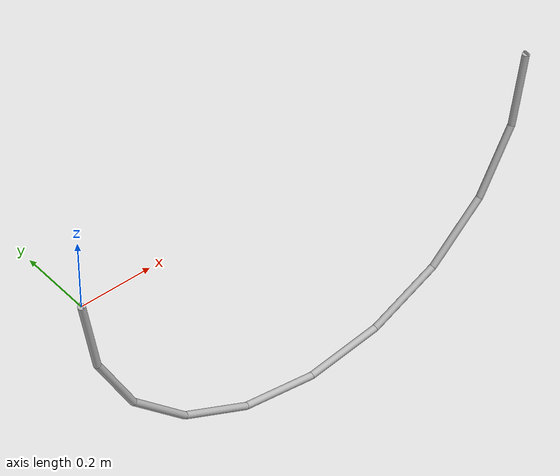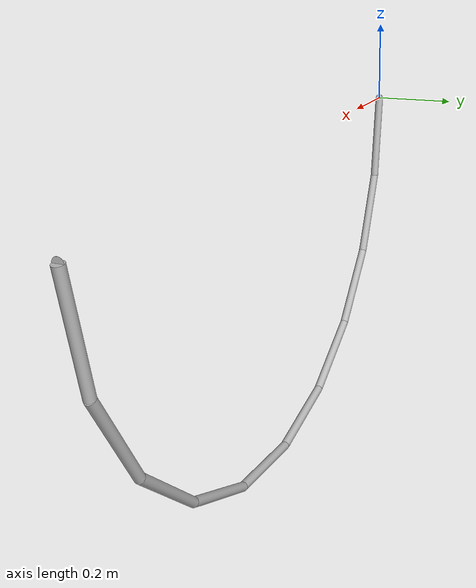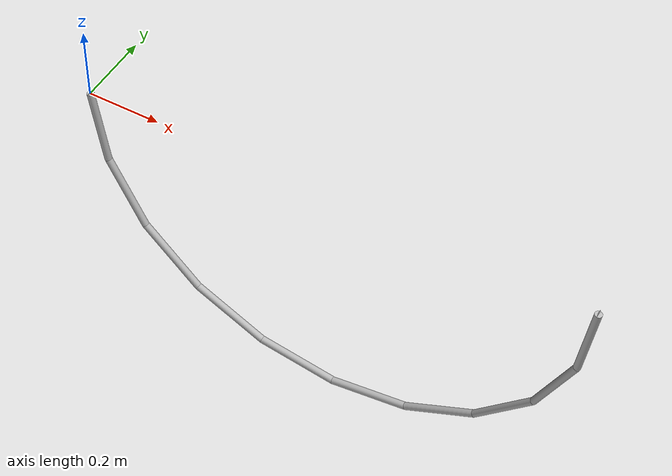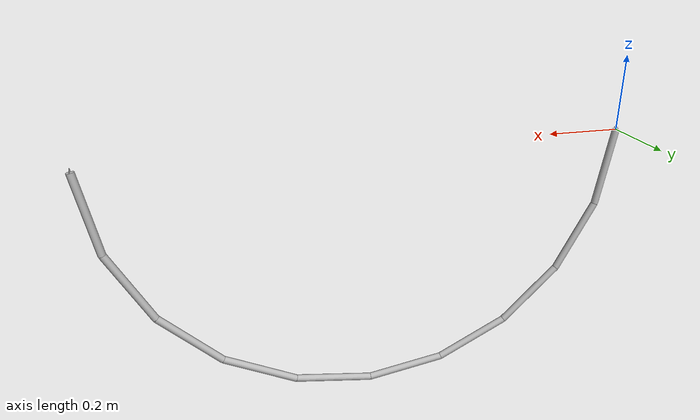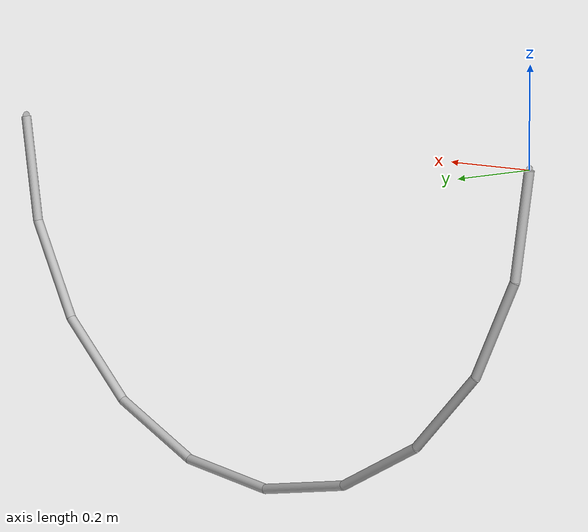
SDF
<sdf version='1.10'>
  <model name='tether'>
    <link name='element_first'>
      <inertial>
        <pose>5.0000000000000002e-05 0 0 0 1.5707963267948966 0</pose>
        <mass>0.0001</mass>
        <inertia>
          <ixx>2.500083333333334e-09</ixx>
          <ixy>0</ixy>
          <ixz>0</ixz>
          <iyy>2.500083333333334e-09</iyy>
          <iyz>0</iyz>
          <izz>5.0000000000000001e-09</izz>
        </inertia>
      </inertial>
      <visual name='element_first_visual'>
        <pose>5.0000000000000002e-05 0 0 0 1.5707963267948966 0</pose>
        <geometry>
          <cylinder>
            <length>0.0001</length>
            <radius>0.01</radius>
          </cylinder>
        </geometry>
      </visual>
    </link>
    <joint name='joint_0_to_1' type='universal'>
      <pose relative_to='element_first'>0.0001 0 0 0 1.4137166941154073 0</pose>
      <parent>element_first</parent>
      <child>element_1</child>
      <axis>
        <xyz>0 1 0</xyz>
        <limit>
          <lower>-inf</lower>
          <upper>inf</upper>
        </limit>
        <dynamics>
          <damping>0.01</damping>
          <friction>0</friction>
          <spring_reference>0</spring_reference>
          <spring_stiffness>0</spring_stiffness>
        </dynamics>
      </axis>
      <axis2>
        <xyz>0 0 1</xyz>
        <limit>
          <lower>-inf</lower>
          <upper>inf</upper>
        </limit>
        <dynamics>
          <damping>0.01</damping>
          <friction>0</friction>
          <spring_reference>0</spring_reference>
          <spring_stiffness>0</spring_stiffness>
        </dynamics>
      </axis2>
    </joint>
    <link name='element_1'>
      <pose relative_to='joint_0_to_1'>0 0 0 0 0 0</pose>
      <inertial>
        <pose>0.10950412552816161 0 0 0 1.5707963267948966 0</pose>
        <mass>0.002</mass>
        <inertia>
          <ixx>8.0441023384582554e-06</ixx>
          <ixy>0</ixy>
          <ixz>0</ixz>
          <iyy>8.0441023384582554e-06</iyy>
          <iyz>0</iyz>
          <izz>9.9999999999999995e-08</izz>
        </inertia>
      </inertial>
      <visual name='element_1_visual'>
        <pose>0.10950412552816161 0 0 0 1.5707963267948966 0</pose>
        <geometry>
          <cylinder>
            <length>0.21900825105632329</length>
            <radius>0.01</radius>
          </cylinder>
        </geometry>
      </visual>
    </link>
    <joint name='joint_1_to_2' type='universal'>
      <pose relative_to='element_1'>0.21900825105632329 0 0 0 -0.31415926535897948 0</pose>
      <parent>element_1</parent>
      <child>element_2</child>
      <axis>
        <xyz>0 1 0</xyz>
        <limit>
          <lower>-inf</lower>
          <upper>inf</upper>
        </limit>
        <dynamics>
          <damping>0.01</damping>
          <friction>0</friction>
          <spring_reference>0</spring_reference>
          <spring_stiffness>0</spring_stiffness>
        </dynamics>
      </axis>
      <axis2>
        <xyz>0 0 1</xyz>
        <limit>
          <lower>-inf</lower>
          <upper>inf</upper>
        </limit>
        <dynamics>
          <damping>0.01</damping>
          <friction>0</friction>
          <spring_reference>0</spring_reference>
          <spring_stiffness>0</spring_stiffness>
        </dynamics>
      </axis2>
    </joint>
    <link name='element_2'>
      <pose relative_to='joint_1_to_2'>0 0 0 0 0 0</pose>
      <inertial>
        <pose>0.10950412552816161 0 0 0 1.5707963267948966 0</pose>
        <mass>0.002</mass>
        <inertia>
          <ixx>8.0441023384582554e-06</ixx>
          <ixy>0</ixy>
          <ixz>0</ixz>
          <iyy>8.0441023384582554e-06</iyy>
          <iyz>0</iyz>
          <izz>9.9999999999999995e-08</izz>
        </inertia>
      </inertial>
      <visual name='element_2_visual'>
        <pose>0.10950412552816161 0 0 0 1.5707963267948966 0</pose>
        <geometry>
          <cylinder>
            <length>0.21900825105632329</length>
            <radius>0.01</radius>
          </cylinder>
        </geometry>
      </visual>
    </link>
    <joint name='joint_2_to_3' type='universal'>
      <pose relative_to='element_2'>0.21900825105632329 0 0 0 -0.31415926535897948 0</pose>
      <parent>element_2</parent>
      <child>element_3</child>
      <axis>
        <xyz>0 1 0</xyz>
        <limit>
          <lower>-inf</lower>
          <upper>inf</upper>
        </limit>
        <dynamics>
          <damping>0.01</damping>
          <friction>0</friction>
          <spring_reference>0</spring_reference>
          <spring_stiffness>0</spring_stiffness>
        </dynamics>
      </axis>
      <axis2>
        <xyz>0 0 1</xyz>
        <limit>
          <lower>-inf</lower>
          <upper>inf</upper>
        </limit>
        <dynamics>
          <damping>0.01</damping>
          <friction>0</friction>
          <spring_reference>0</spring_reference>
          <spring_stiffness>0</spring_stiffness>
        </dynamics>
      </axis2>
    </joint>
    <link name='element_3'>
      <pose relative_to='joint_2_to_3'>0 0 0 0 0 0</pose>
      <inertial>
        <pose>0.10950412552816161 0 0 0 1.5707963267948966 0</pose>
        <mass>0.002</mass>
        <inertia>
          <ixx>8.0441023384582554e-06</ixx>
          <ixy>0</ixy>
          <ixz>0</ixz>
          <iyy>8.0441023384582554e-06</iyy>
          <iyz>0</iyz>
          <izz>9.9999999999999995e-08</izz>
        </inertia>
      </inertial>
      <visual name='element_3_visual'>
        <pose>0.10950412552816161 0 0 0 1.5707963267948966 0</pose>
        <geometry>
          <cylinder>
            <length>0.21900825105632329</length>
            <radius>0.01</radius>
          </cylinder>
        </geometry>
      </visual>
    </link>
    <joint name='joint_3_to_4' type='universal'>
      <pose relative_to='element_3'>0.21900825105632329 0 0 0 -0.31415926535897948 0</pose>
      <parent>element_3</parent>
      <child>element_4</child>
      <axis>
        <xyz>0 1 0</xyz>
        <limit>
          <lower>-inf</lower>
          <upper>inf</upper>
        </limit>
        <dynamics>
          <damping>0.01</damping>
          <friction>0</friction>
          <spring_reference>0</spring_reference>
          <spring_stiffness>0</spring_stiffness>
        </dynamics>
      </axis>
      <axis2>
        <xyz>0 0 1</xyz>
        <limit>
          <lower>-inf</lower>
          <upper>inf</upper>
        </limit>
        <dynamics>
          <damping>0.01</damping>
          <friction>0</friction>
          <spring_reference>0</spring_reference>
          <spring_stiffness>0</spring_stiffness>
        </dynamics>
      </axis2>
    </joint>
    <link name='element_4'>
      <pose relative_to='joint_3_to_4'>0 0 0 0 0 0</pose>
      <inertial>
        <pose>0.10950412552816161 0 0 0 1.5707963267948966 0</pose>
        <mass>0.002</mass>
        <inertia>
          <ixx>8.0441023384582554e-06</ixx>
          <ixy>0</ixy>
          <ixz>0</ixz>
          <iyy>8.0441023384582554e-06</iyy>
          <iyz>0</iyz>
          <izz>9.9999999999999995e-08</izz>
        </inertia>
      </inertial>
      <visual name='element_4_visual'>
        <pose>0.10950412552816161 0 0 0 1.5707963267948966 0</pose>
        <geometry>
          <cylinder>
            <length>0.21900825105632329</length>
            <radius>0.01</radius>
          </cylinder>
        </geometry>
      </visual>
    </link>
    <joint name='joint_4_to_5' type='universal'>
      <pose relative_to='element_4'>0.21900825105632329 0 0 0 -0.31415926535897948 0</pose>
      <parent>element_4</parent>
      <child>element_5</child>
      <axis>
        <xyz>0 1 0</xyz>
        <limit>
          <lower>-inf</lower>
          <upper>inf</upper>
        </limit>
        <dynamics>
          <damping>0.01</damping>
          <friction>0</friction>
          <spring_reference>0</spring_reference>
          <spring_stiffness>0</spring_stiffness>
        </dynamics>
      </axis>
      <axis2>
        <xyz>0 0 1</xyz>
        <limit>
          <lower>-inf</lower>
          <upper>inf</upper>
        </limit>
        <dynamics>
          <damping>0.01</damping>
          <friction>0</friction>
          <spring_reference>0</spring_reference>
          <spring_stiffness>0</spring_stiffness>
        </dynamics>
      </axis2>
    </joint>
    <link name='element_5'>
      <pose relative_to='joint_4_to_5'>0 0 0 0 0 0</pose>
      <inertial>
        <pose>0.10950412552816161 0 0 0 1.5707963267948966 0</pose>
        <mass>0.002</mass>
        <inertia>
          <ixx>8.0441023384582554e-06</ixx>
          <ixy>0</ixy>
          <ixz>0</ixz>
          <iyy>8.0441023384582554e-06</iyy>
          <iyz>0</iyz>
          <izz>9.9999999999999995e-08</izz>
        </inertia>
      </inertial>
      <visual name='element_5_visual'>
        <pose>0.10950412552816161 0 0 0 1.5707963267948966 0</pose>
        <geometry>
          <cylinder>
            <length>0.21900825105632329</length>
            <radius>0.01</radius>
          </cylinder>
        </geometry>
      </visual>
    </link>
    <joint name='joint_5_to_6' type='universal'>
      <pose relative_to='element_5'>0.21900825105632329 0 0 0 -0.31415926535897948 0</pose>
      <parent>element_5</parent>
      <child>element_6</child>
      <axis>
        <xyz>0 1 0</xyz>
        <limit>
          <lower>-inf</lower>
          <upper>inf</upper>
        </limit>
        <dynamics>
          <damping>0.01</damping>
          <friction>0</friction>
          <spring_reference>0</spring_reference>
          <spring_stiffness>0</spring_stiffness>
        </dynamics>
      </axis>
      <axis2>
        <xyz>0 0 1</xyz>
        <limit>
          <lower>-inf</lower>
          <upper>inf</upper>
        </limit>
        <dynamics>
          <damping>0.01</damping>
          <friction>0</friction>
          <spring_reference>0</spring_reference>
          <spring_stiffness>0</spring_stiffness>
        </dynamics>
      </axis2>
    </joint>
    <link name='element_6'>
      <pose relative_to='joint_5_to_6'>0 0 0 0 0 0</pose>
      <inertial>
        <pose>0.10950412552816161 0 0 0 1.5707963267948966 0</pose>
        <mass>0.002</mass>
        <inertia>
          <ixx>8.0441023384582554e-06</ixx>
          <ixy>0</ixy>
          <ixz>0</ixz>
          <iyy>8.0441023384582554e-06</iyy>
          <iyz>0</iyz>
          <izz>9.9999999999999995e-08</izz>
        </inertia>
      </inertial>
      <visual name='element_6_visual'>
        <pose>0.10950412552816161 0 0 0 1.5707963267948966 0</pose>
        <geometry>
          <cylinder>
            <length>0.21900825105632329</length>
            <radius>0.01</radius>
          </cylinder>
        </geometry>
      </visual>
    </link>
    <joint name='joint_6_to_7' type='universal'>
      <pose relative_to='element_6'>0.21900825105632329 0 0 0 -0.31415926535897948 0</pose>
      <parent>element_6</parent>
      <child>element_7</child>
      <axis>
        <xyz>0 1 0</xyz>
        <limit>
          <lower>-inf</lower>
          <upper>inf</upper>
        </limit>
        <dynamics>
          <damping>0.01</damping>
          <friction>0</friction>
          <spring_reference>0</spring_reference>
          <spring_stiffness>0</spring_stiffness>
        </dynamics>
      </axis>
      <axis2>
        <xyz>0 0 1</xyz>
        <limit>
          <lower>-inf</lower>
          <upper>inf</upper>
        </limit>
        <dynamics>
          <damping>0.01</damping>
          <friction>0</friction>
          <spring_reference>0</spring_reference>
          <spring_stiffness>0</spring_stiffness>
        </dynamics>
      </axis2>
    </joint>
    <link name='element_7'>
      <pose relative_to='joint_6_to_7'>0 0 0 0 0 0</pose>
      <inertial>
        <pose>0.10950412552816161 0 0 0 1.5707963267948966 0</pose>
        <mass>0.002</mass>
        <inertia>
          <ixx>8.0441023384582554e-06</ixx>
          <ixy>0</ixy>
          <ixz>0</ixz>
          <iyy>8.0441023384582554e-06</iyy>
          <iyz>0</iyz>
          <izz>9.9999999999999995e-08</izz>
        </inertia>
      </inertial>
      <visual name='element_7_visual'>
        <pose>0.10950412552816161 0 0 0 1.5707963267948966 0</pose>
        <geometry>
          <cylinder>
            <length>0.21900825105632329</length>
            <radius>0.01</radius>
          </cylinder>
        </geometry>
      </visual>
    </link>
    <joint name='joint_7_to_8' type='universal'>
      <pose relative_to='element_7'>0.21900825105632329 0 0 0 -0.31415926535897948 0</pose>
      <parent>element_7</parent>
      <child>element_8</child>
      <axis>
        <xyz>0 1 0</xyz>
        <limit>
          <lower>-inf</lower>
          <upper>inf</upper>
        </limit>
        <dynamics>
          <damping>0.01</damping>
          <friction>0</friction>
          <spring_reference>0</spring_reference>
          <spring_stiffness>0</spring_stiffness>
        </dynamics>
      </axis>
      <axis2>
        <xyz>0 0 1</xyz>
        <limit>
          <lower>-inf</lower>
          <upper>inf</upper>
        </limit>
        <dynamics>
          <damping>0.01</damping>
          <friction>0</friction>
          <spring_reference>0</spring_reference>
          <spring_stiffness>0</spring_stiffness>
        </dynamics>
      </axis2>
    </joint>
    <link name='element_8'>
      <pose relative_to='joint_7_to_8'>0 0 0 0 0 0</pose>
      <inertial>
        <pose>0.10950412552816161 0 0 0 1.5707963267948966 0</pose>
        <mass>0.002</mass>
        <inertia>
          <ixx>8.0441023384582554e-06</ixx>
          <ixy>0</ixy>
          <ixz>0</ixz>
          <iyy>8.0441023384582554e-06</iyy>
          <iyz>0</iyz>
          <izz>9.9999999999999995e-08</izz>
        </inertia>
      </inertial>
      <visual name='element_8_visual'>
        <pose>0.10950412552816161 0 0 0 1.5707963267948966 0</pose>
        <geometry>
          <cylinder>
            <length>0.21900825105632329</length>
            <radius>0.01</radius>
          </cylinder>
        </geometry>
      </visual>
    </link>
    <joint name='joint_8_to_9' type='universal'>
      <pose relative_to='element_8'>0.21900825105632329 0 0 0 -0.31415926535897948 0</pose>
      <parent>element_8</parent>
      <child>element_9</child>
      <axis>
        <xyz>0 1 0</xyz>
        <limit>
          <lower>-inf</lower>
          <upper>inf</upper>
        </limit>
        <dynamics>
          <damping>0.01</damping>
          <friction>0</friction>
          <spring_reference>0</spring_reference>
          <spring_stiffness>0</spring_stiffness>
        </dynamics>
      </axis>
      <axis2>
        <xyz>0 0 1</xyz>
        <limit>
          <lower>-inf</lower>
          <upper>inf</upper>
        </limit>
        <dynamics>
          <damping>0.01</damping>
          <friction>0</friction>
          <spring_reference>0</spring_reference>
          <spring_stiffness>0</spring_stiffness>
        </dynamics>
      </axis2>
    </joint>
    <link name='element_9'>
      <pose relative_to='joint_8_to_9'>0 0 0 0 0 0</pose>
      <inertial>
        <pose>0.10950412552816161 0 0 0 1.5707963267948966 0</pose>
        <mass>0.002</mass>
        <inertia>
          <ixx>8.0441023384582554e-06</ixx>
          <ixy>0</ixy>
          <ixz>0</ixz>
          <iyy>8.0441023384582554e-06</iyy>
          <iyz>0</iyz>
          <izz>9.9999999999999995e-08</izz>
        </inertia>
      </inertial>
      <visual name='element_9_visual'>
        <pose>0.10950412552816161 0 0 0 1.5707963267948966 0</pose>
        <geometry>
          <cylinder>
            <length>0.21900825105632329</length>
            <radius>0.01</radius>
          </cylinder>
        </geometry>
      </visual>
    </link>
    <joint name='joint_9_to_10' type='universal'>
      <pose relative_to='element_9'>0.21900825105632329 0 0 0 -0.31415926535897948 0</pose>
      <parent>element_9</parent>
      <child>element_10</child>
      <axis>
        <xyz>0 1 0</xyz>
        <limit>
          <lower>-inf</lower>
          <upper>inf</upper>
        </limit>
        <dynamics>
          <damping>0.01</damping>
          <friction>0</friction>
          <spring_reference>0</spring_reference>
          <spring_stiffness>0</spring_stiffness>
        </dynamics>
      </axis>
      <axis2>
        <xyz>0 0 1</xyz>
        <limit>
          <lower>-inf</lower>
          <upper>inf</upper>
        </limit>
        <dynamics>
          <damping>0.01</damping>
          <friction>0</friction>
          <spring_reference>0</spring_reference>
          <spring_stiffness>0</spring_stiffness>
        </dynamics>
      </axis2>
    </joint>
    <link name='element_10'>
      <pose relative_to='joint_9_to_10'>0 0 0 0 0 0</pose>
      <inertial>
        <pose>0.10950412552816161 0 0 0 1.5707963267948966 0</pose>
        <mass>0.002</mass>
        <inertia>
          <ixx>8.0441023384582554e-06</ixx>
          <ixy>0</ixy>
          <ixz>0</ixz>
          <iyy>8.0441023384582554e-06</iyy>
          <iyz>0</iyz>
          <izz>9.9999999999999995e-08</izz>
        </inertia>
      </inertial>
      <visual name='element_10_visual'>
        <pose>0.10950412552816161 0 0 0 1.5707963267948966 0</pose>
        <geometry>
          <cylinder>
            <length>0.21900825105632329</length>
            <radius>0.01</radius>
          </cylinder>
        </geometry>
      </visual>
    </link>
    <joint name='joint_10_to_11' type='universal'>
      <pose relative_to='element_10'>0.21900825105632329 0 0 0 1.4137166941154073 0</pose>
      <parent>element_10</parent>
      <child>element_last</child>
      <axis>
        <xyz>0 1 0</xyz>
        <limit>
          <lower>-inf</lower>
          <upper>inf</upper>
        </limit>
        <dynamics>
          <damping>0.01</damping>
          <friction>0</friction>
          <spring_reference>0</spring_reference>
          <spring_stiffness>0</spring_stiffness>
        </dynamics>
      </axis>
      <axis2>
        <xyz>0 0 1</xyz>
        <limit>
          <lower>-inf</lower>
          <upper>inf</upper>
        </limit>
        <dynamics>
          <damping>0.01</damping>
          <friction>0</friction>
          <spring_reference>0</spring_reference>
          <spring_stiffness>0</spring_stiffness>
        </dynamics>
      </axis2>
    </joint>
    <link name='element_last'>
      <pose relative_to='joint_10_to_11'>0 0 0 0 0 0</pose>
      <inertial>
        <pose>5.0000000000000002e-05 0 0 0 1.5707963267948966 0</pose>
        <mass>0.0001</mass>
        <inertia>
          <ixx>2.500083333333334e-09</ixx>
          <ixy>0</ixy>
          <ixz>0</ixz>
          <iyy>2.500083333333334e-09</iyy>
          <iyz>0</iyz>
          <izz>5.0000000000000001e-09</izz>
        </inertia>
      </inertial>
      <visual name='element_last_visual'>
        <pose>5.0000000000000002e-05 0 0 0 1.5707963267948966 0</pose>
        <geometry>
          <cylinder>
            <length>0.0001</length>
            <radius>0.01</radius>
          </cylinder>
        </geometry>
      </visual>
    </link>
  </model>
</sdf>
